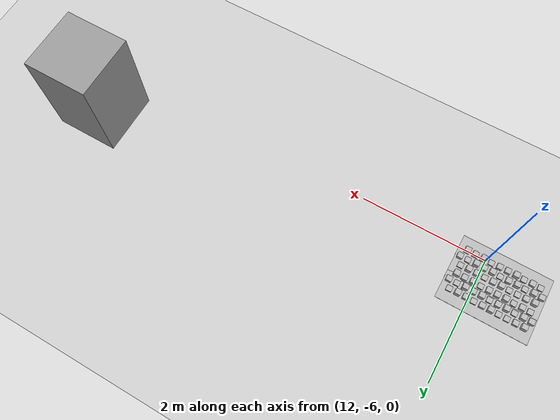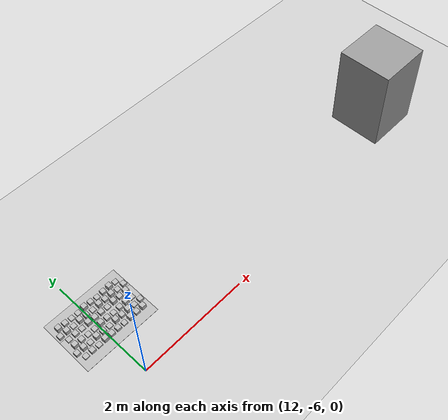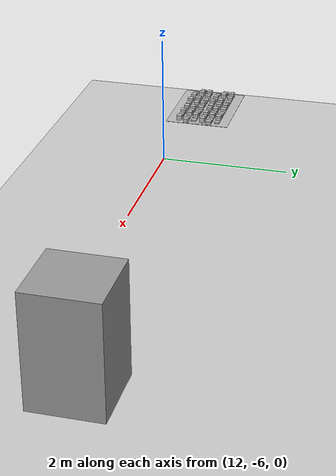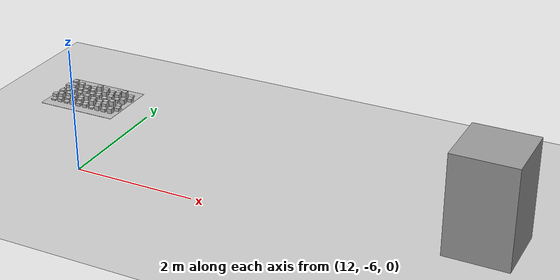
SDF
<sdf version="1.6">
 <world name="default">
  <model name="ground_plane">
   <static>1</static>
   <link name="link">
    <collision name="collision">
     <geometry><plane><normal>0 0 1</normal><size>100 100</size></plane></geometry>
     <surface><friction><ode><mu>100</mu><mu2>50</mu2></ode></friction></surface>
    </collision>
    <visual name="visual">
     <cast_shadows>0</cast_shadows>
     <geometry><plane><normal>0 0 1</normal><size>100 100</size></plane></geometry>
     <material>
      <script><uri>file://media/materials/scripts/gazebo.material</uri><name>Gazebo/Grey</name></script>
     </material>
    </visual>
   </link>
  </model>
  <model name="frc2016_roughterrain_clone_2_clone_clone_3">
   <static>1</static>
   <link name="link">
    <visual name="platform">
     <pose>0 0 0.08269 0 -0 0</pose>
     <geometry><box><size>1.27 0.5969 0.003175</size></box></geometry>
    </visual>
    <collision name="platform">
     <pose>0 0 0.08269 0 -0 0</pose>
     <geometry><box><size>1.27 0.5969 0.003175</size></box></geometry>
    </collision>
    <visual name="row1_block1_sm">
     <pose>0.51435 0.1143 0.09698 0 -0 0</pose>
     <geometry><box><size>0.0762 0.0762 0.0254</size></box></geometry>
    </visual>
    <collision name="row1_block1_sm">
     <pose>0.51435 0.1143 0.09698 0 -0 0</pose>
     <geometry><box><size>0.0762 0.0762 0.0254</size></box></geometry>
    </collision>
    <visual name="row1_block2_lg">
     <pose>0.40005 0.1143 0.12238 0 -0 0</pose>
     <geometry><box><size>0.0762 0.0762 0.0762</size></box></geometry>
    </visual>
    <collision name="row1_block2_lg">
     <pose>0.40005 0.1143 0.12238 0 -0 0</pose>
     <geometry><box><size>0.0762 0.0762 0.0762</size></box></geometry>
    </collision>
    <visual name="row1_block3_md">
     <pose>0.28575 0.1143 0.10968 0 -0 0</pose>
     <geometry><box><size>0.0762 0.0762 0.0508</size></box></geometry>
    </visual>
    <collision name="row1_block3_md">
     <pose>0.28575 0.1143 0.10968 0 -0 0</pose>
     <geometry><box><size>0.0762 0.0762 0.0508</size></box></geometry>
    </collision>
    <visual name="row1_block4_sm">
     <pose>0.17145 0.1143 0.09698 0 -0 0</pose>
     <geometry><box><size>0.0762 0.0762 0.0254</size></box></geometry>
    </visual>
    <collision name="row1_block4_sm">
     <pose>0.17145 0.1143 0.09698 0 -0 0</pose>
     <geometry><box><size>0.0762 0.0762 0.0254</size></box></geometry>
    </collision>
    <visual name="row1_block5_md">
     <pose>0.05715 0.1143 0.10968 0 -0 0</pose>
     <geometry><box><size>0.0762 0.0762 0.0508</size></box></geometry>
    </visual>
    <collision name="row1_block5_md">
     <pose>0.05715 0.1143 0.10968 0 -0 0</pose>
     <geometry><box><size>0.0762 0.0762 0.0508</size></box></geometry>
    </collision>
    <visual name="row1_block6_lg">
     <pose>-0.05715 0.1143 0.12238 0 -0 0</pose>
     <geometry><box><size>0.0762 0.0762 0.0762</size></box></geometry>
    </visual>
    <collision name="row1_block6_lg">
     <pose>-0.05715 0.1143 0.12238 0 -0 0</pose>
     <geometry><box><size>0.0762 0.0762 0.0762</size></box></geometry>
    </collision>
    <visual name="row1_block7_sm">
     <pose>-0.17145 0.1143 0.09698 0 -0 0</pose>
     <geometry><box><size>0.0762 0.0762 0.0254</size></box></geometry>
    </visual>
    <collision name="row1_block7_sm">
     <pose>-0.17145 0.1143 0.09698 0 -0 0</pose>
     <geometry><box><size>0.0762 0.0762 0.0254</size></box></geometry>
    </collision>
    <visual name="row1_block8_sm">
     <pose>-0.28575 0.1143 0.09698 0 -0 0</pose>
     <geometry><box><size>0.0762 0.0762 0.0254</size></box></geometry>
    </visual>
    <collision name="row1_block8_sm">
     <pose>-0.28575 0.1143 0.09698 0 -0 0</pose>
     <geometry><box><size>0.0762 0.0762 0.0254</size></box></geometry>
    </collision>
    <visual name="row1_block9_md">
     <pose>-0.40005 0.1143 0.10968 0 -0 0</pose>
     <geometry><box><size>0.0762 0.0762 0.0508</size></box></geometry>
    </visual>
    <collision name="row1_block9_md">
     <pose>-0.40005 0.1143 0.10968 0 -0 0</pose>
     <geometry><box><size>0.0762 0.0762 0.0508</size></box></geometry>
    </collision>
    <visual name="row1_block10_lg">
     <pose>-0.51435 0.1143 0.12238 0 -0 0</pose>
     <geometry><box><size>0.0762 0.0762 0.0762</size></box></geometry>
    </visual>
    <collision name="row1_block10_lg">
     <pose>-0.51435 0.1143 0.12238 0 -0 0</pose>
     <geometry><box><size>0.0762 0.0762 0.0762</size></box></geometry>
    </collision>
    <visual name="row2_block1_md">
     <pose>0.5715 0 0.10968 0 -0 0</pose>
     <geometry><box><size>0.0762 0.0762 0.0508</size></box></geometry>
    </visual>
    <collision name="row2_block1_md">
     <pose>0.5715 0 0.10968 0 -0 0</pose>
     <geometry><box><size>0.0762 0.0762 0.0508</size></box></geometry>
    </collision>
    <visual name="row2_block2_sm">
     <pose>0.4572 0 0.09698 0 -0 0</pose>
     <geometry><box><size>0.0762 0.0762 0.0254</size></box></geometry>
    </visual>
    <collision name="row2_block2_sm">
     <pose>0.4572 0 0.09698 0 -0 0</pose>
     <geometry><box><size>0.0762 0.0762 0.0254</size></box></geometry>
    </collision>
    <visual name="row2_block3_lg">
     <pose>0.3429 0 0.12238 0 -0 0</pose>
     <geometry><box><size>0.0762 0.0762 0.0762</size></box></geometry>
    </visual>
    <collision name="row2_block3_lg">
     <pose>0.3429 0 0.12238 0 -0 0</pose>
     <geometry><box><size>0.0762 0.0762 0.0762</size></box></geometry>
    </collision>
    <visual name="row2_block4_md">
     <pose>0.2286 0 0.10968 0 -0 0</pose>
     <geometry><box><size>0.0762 0.0762 0.0508</size></box></geometry>
    </visual>
    <collision name="row2_block4_md">
     <pose>0.2286 0 0.10968 0 -0 0</pose>
     <geometry><box><size>0.0762 0.0762 0.0508</size></box></geometry>
    </collision>
    <visual name="row2_block5_lg">
     <pose>0.1143 0 0.12238 0 -0 0</pose>
     <geometry><box><size>0.0762 0.0762 0.0762</size></box></geometry>
    </visual>
    <collision name="row2_block5_lg">
     <pose>0.1143 0 0.12238 0 -0 0</pose>
     <geometry><box><size>0.0762 0.0762 0.0762</size></box></geometry>
    </collision>
    <visual name="row2_block6_sm">
     <pose>0 0 0.09698 0 -0 0</pose>
     <geometry><box><size>0.0762 0.0762 0.0254</size></box></geometry>
    </visual>
    <collision name="row2_block6_sm">
     <pose>0 0 0.09698 0 -0 0</pose>
     <geometry><box><size>0.0762 0.0762 0.0254</size></box></geometry>
    </collision>
    <visual name="row2_block7_md">
     <pose>-0.1143 0 0.10968 0 -0 0</pose>
     <geometry><box><size>0.0762 0.0762 0.0508</size></box></geometry>
    </visual>
    <collision name="row2_block7_md">
     <pose>-0.1143 0 0.10968 0 -0 0</pose>
     <geometry><box><size>0.0762 0.0762 0.0508</size></box></geometry>
    </collision>
    <visual name="row2_block8_lg">
     <pose>-0.2286 0 0.12238 0 -0 0</pose>
     <geometry><box><size>0.0762 0.0762 0.0762</size></box></geometry>
    </visual>
    <collision name="row2_block8_lg">
     <pose>-0.2286 0 0.12238 0 -0 0</pose>
     <geometry><box><size>0.0762 0.0762 0.0762</size></box></geometry>
    </collision>
    <visual name="row2_block9_sm">
     <pose>-0.3429 0 0.09698 0 -0 0</pose>
     <geometry><box><size>0.0762 0.0762 0.0254</size></box></geometry>
    </visual>
    <collision name="row2_block9_sm">
     <pose>-0.3429 0 0.09698 0 -0 0</pose>
     <geometry><box><size>0.0762 0.0762 0.0254</size></box></geometry>
    </collision>
    <visual name="row2_block10_lg">
     <pose>-0.4572 0 0.12238 0 -0 0</pose>
     <geometry><box><size>0.0762 0.0762 0.0762</size></box></geometry>
    </visual>
    <collision name="row2_block10_lg">
     <pose>-0.4572 0 0.12238 0 -0 0</pose>
     <geometry><box><size>0.0762 0.0762 0.0762</size></box></geometry>
    </collision>
    <visual name="row2_block11_md">
     <pose>-0.5715 0 0.10968 0 -0 0</pose>
     <geometry><box><size>0.0762 0.0762 0.0508</size></box></geometry>
    </visual>
    <collision name="row2_block11_md">
     <pose>-0.5715 0 0.10968 0 -0 0</pose>
     <geometry><box><size>0.0762 0.0762 0.0508</size></box></geometry>
    </collision>
    <visual name="row3_block1_lg">
     <pose>0.51435 -0.1143 0.12238 0 -0 0</pose>
     <geometry><box><size>0.0762 0.0762 0.0762</size></box></geometry>
    </visual>
    <collision name="row3_block1_lg">
     <pose>0.51435 -0.1143 0.12238 0 -0 0</pose>
     <geometry><box><size>0.0762 0.0762 0.0762</size></box></geometry>
    </collision>
    <visual name="row3_block2_md">
     <pose>0.40005 -0.1143 0.10968 0 -0 0</pose>
     <geometry><box><size>0.0762 0.0762 0.0508</size></box></geometry>
    </visual>
    <collision name="row3_block2_md">
     <pose>0.40005 -0.1143 0.10968 0 -0 0</pose>
     <geometry><box><size>0.0762 0.0762 0.0508</size></box></geometry>
    </collision>
    <visual name="row3_block3_lg">
     <pose>0.28575 -0.1143 0.12238 0 -0 0</pose>
     <geometry><box><size>0.0762 0.0762 0.0762</size></box></geometry>
    </visual>
    <collision name="row3_block3_lg">
     <pose>0.28575 -0.1143 0.12238 0 -0 0</pose>
     <geometry><box><size>0.0762 0.0762 0.0762</size></box></geometry>
    </collision>
    <visual name="row3_block4_sm">
     <pose>0.17145 -0.1143 0.09698 0 -0 0</pose>
     <geometry><box><size>0.0762 0.0762 0.0254</size></box></geometry>
    </visual>
    <collision name="row3_block4_sm">
     <pose>0.17145 -0.1143 0.09698 0 -0 0</pose>
     <geometry><box><size>0.0762 0.0762 0.0254</size></box></geometry>
    </collision>
    <visual name="row3_block5_md">
     <pose>0.05715 -0.1143 0.10968 0 -0 0</pose>
     <geometry><box><size>0.0762 0.0762 0.0508</size></box></geometry>
    </visual>
    <collision name="row3_block5_md">
     <pose>0.05715 -0.1143 0.10968 0 -0 0</pose>
     <geometry><box><size>0.0762 0.0762 0.0508</size></box></geometry>
    </collision>
    <visual name="row3_block6_md">
     <pose>-0.05715 -0.1143 0.10968 0 -0 0</pose>
     <geometry><box><size>0.0762 0.0762 0.0508</size></box></geometry>
    </visual>
    <collision name="row3_block6_md">
     <pose>-0.05715 -0.1143 0.10968 0 -0 0</pose>
     <geometry><box><size>0.0762 0.0762 0.0508</size></box></geometry>
    </collision>
    <visual name="row3_block7_lg">
     <pose>-0.17145 -0.1143 0.12238 0 -0 0</pose>
     <geometry><box><size>0.0762 0.0762 0.0762</size></box></geometry>
    </visual>
    <collision name="row3_block7_lg">
     <pose>-0.17145 -0.1143 0.12238 0 -0 0</pose>
     <geometry><box><size>0.0762 0.0762 0.0762</size></box></geometry>
    </collision>
    <visual name="row3_block8_sm">
     <pose>-0.28575 -0.1143 0.09698 0 -0 0</pose>
     <geometry><box><size>0.0762 0.0762 0.0254</size></box></geometry>
    </visual>
    <collision name="row3_block8_sm">
     <pose>-0.28575 -0.1143 0.09698 0 -0 0</pose>
     <geometry><box><size>0.0762 0.0762 0.0254</size></box></geometry>
    </collision>
    <visual name="row3_block9_md">
     <pose>-0.40005 -0.1143 0.10968 0 -0 0</pose>
     <geometry><box><size>0.0762 0.0762 0.0508</size></box></geometry>
    </visual>
    <collision name="row3_block9_md">
     <pose>-0.40005 -0.1143 0.10968 0 -0 0</pose>
     <geometry><box><size>0.0762 0.0762 0.0508</size></box></geometry>
    </collision>
    <visual name="row3_block10_sm">
     <pose>-0.51435 -0.1143 0.09698 0 -0 0</pose>
     <geometry><box><size>0.0762 0.0762 0.0254</size></box></geometry>
    </visual>
    <collision name="row3_block10_sm">
     <pose>-0.51435 -0.1143 0.09698 0 -0 0</pose>
     <geometry><box><size>0.0762 0.0762 0.0254</size></box></geometry>
    </collision>
   </link>
   <pose>11.8897 -5.152 0.826533 0 -0 0</pose>
  </model>
  <model name="frc2016_roughterrain_clone_2_clone_clone_4">
   <static>1</static>
   <link name="link">
    <visual name="platform">
     <pose>0 0 0.08269 0 -0 0</pose>
     <geometry><box><size>1.27 0.5969 0.003175</size></box></geometry>
    </visual>
    <collision name="platform">
     <pose>0 0 0.08269 0 -0 0</pose>
     <geometry><box><size>1.27 0.5969 0.003175</size></box></geometry>
    </collision>
    <visual name="row1_block1_sm">
     <pose>0.51435 0.1143 0.09698 0 -0 0</pose>
     <geometry><box><size>0.0762 0.0762 0.0254</size></box></geometry>
    </visual>
    <collision name="row1_block1_sm">
     <pose>0.51435 0.1143 0.09698 0 -0 0</pose>
     <geometry><box><size>0.0762 0.0762 0.0254</size></box></geometry>
    </collision>
    <visual name="row1_block2_lg">
     <pose>0.40005 0.1143 0.12238 0 -0 0</pose>
     <geometry><box><size>0.0762 0.0762 0.0762</size></box></geometry>
    </visual>
    <collision name="row1_block2_lg">
     <pose>0.40005 0.1143 0.12238 0 -0 0</pose>
     <geometry><box><size>0.0762 0.0762 0.0762</size></box></geometry>
    </collision>
    <visual name="row1_block3_md">
     <pose>0.28575 0.1143 0.10968 0 -0 0</pose>
     <geometry><box><size>0.0762 0.0762 0.0508</size></box></geometry>
    </visual>
    <collision name="row1_block3_md">
     <pose>0.28575 0.1143 0.10968 0 -0 0</pose>
     <geometry><box><size>0.0762 0.0762 0.0508</size></box></geometry>
    </collision>
    <visual name="row1_block4_sm">
     <pose>0.17145 0.1143 0.09698 0 -0 0</pose>
     <geometry><box><size>0.0762 0.0762 0.0254</size></box></geometry>
    </visual>
    <collision name="row1_block4_sm">
     <pose>0.17145 0.1143 0.09698 0 -0 0</pose>
     <geometry><box><size>0.0762 0.0762 0.0254</size></box></geometry>
    </collision>
    <visual name="row1_block5_md">
     <pose>0.05715 0.1143 0.10968 0 -0 0</pose>
     <geometry><box><size>0.0762 0.0762 0.0508</size></box></geometry>
    </visual>
    <collision name="row1_block5_md">
     <pose>0.05715 0.1143 0.10968 0 -0 0</pose>
     <geometry><box><size>0.0762 0.0762 0.0508</size></box></geometry>
    </collision>
    <visual name="row1_block6_lg">
     <pose>-0.05715 0.1143 0.12238 0 -0 0</pose>
     <geometry><box><size>0.0762 0.0762 0.0762</size></box></geometry>
    </visual>
    <collision name="row1_block6_lg">
     <pose>-0.05715 0.1143 0.12238 0 -0 0</pose>
     <geometry><box><size>0.0762 0.0762 0.0762</size></box></geometry>
    </collision>
    <visual name="row1_block7_sm">
     <pose>-0.17145 0.1143 0.09698 0 -0 0</pose>
     <geometry><box><size>0.0762 0.0762 0.0254</size></box></geometry>
    </visual>
    <collision name="row1_block7_sm">
     <pose>-0.17145 0.1143 0.09698 0 -0 0</pose>
     <geometry><box><size>0.0762 0.0762 0.0254</size></box></geometry>
    </collision>
    <visual name="row1_block8_sm">
     <pose>-0.28575 0.1143 0.09698 0 -0 0</pose>
     <geometry><box><size>0.0762 0.0762 0.0254</size></box></geometry>
    </visual>
    <collision name="row1_block8_sm">
     <pose>-0.28575 0.1143 0.09698 0 -0 0</pose>
     <geometry><box><size>0.0762 0.0762 0.0254</size></box></geometry>
    </collision>
    <visual name="row1_block9_md">
     <pose>-0.40005 0.1143 0.10968 0 -0 0</pose>
     <geometry><box><size>0.0762 0.0762 0.0508</size></box></geometry>
    </visual>
    <collision name="row1_block9_md">
     <pose>-0.40005 0.1143 0.10968 0 -0 0</pose>
     <geometry><box><size>0.0762 0.0762 0.0508</size></box></geometry>
    </collision>
    <visual name="row1_block10_lg">
     <pose>-0.51435 0.1143 0.12238 0 -0 0</pose>
     <geometry><box><size>0.0762 0.0762 0.0762</size></box></geometry>
    </visual>
    <collision name="row1_block10_lg">
     <pose>-0.51435 0.1143 0.12238 0 -0 0</pose>
     <geometry><box><size>0.0762 0.0762 0.0762</size></box></geometry>
    </collision>
    <visual name="row2_block1_md">
     <pose>0.5715 0 0.10968 0 -0 0</pose>
     <geometry><box><size>0.0762 0.0762 0.0508</size></box></geometry>
    </visual>
    <collision name="row2_block1_md">
     <pose>0.5715 0 0.10968 0 -0 0</pose>
     <geometry><box><size>0.0762 0.0762 0.0508</size></box></geometry>
    </collision>
    <visual name="row2_block2_sm">
     <pose>0.4572 0 0.09698 0 -0 0</pose>
     <geometry><box><size>0.0762 0.0762 0.0254</size></box></geometry>
    </visual>
    <collision name="row2_block2_sm">
     <pose>0.4572 0 0.09698 0 -0 0</pose>
     <geometry><box><size>0.0762 0.0762 0.0254</size></box></geometry>
    </collision>
    <visual name="row2_block3_lg">
     <pose>0.3429 0 0.12238 0 -0 0</pose>
     <geometry><box><size>0.0762 0.0762 0.0762</size></box></geometry>
    </visual>
    <collision name="row2_block3_lg">
     <pose>0.3429 0 0.12238 0 -0 0</pose>
     <geometry><box><size>0.0762 0.0762 0.0762</size></box></geometry>
    </collision>
    <visual name="row2_block4_md">
     <pose>0.2286 0 0.10968 0 -0 0</pose>
     <geometry><box><size>0.0762 0.0762 0.0508</size></box></geometry>
    </visual>
    <collision name="row2_block4_md">
     <pose>0.2286 0 0.10968 0 -0 0</pose>
     <geometry><box><size>0.0762 0.0762 0.0508</size></box></geometry>
    </collision>
    <visual name="row2_block5_lg">
     <pose>0.1143 0 0.12238 0 -0 0</pose>
     <geometry><box><size>0.0762 0.0762 0.0762</size></box></geometry>
    </visual>
    <collision name="row2_block5_lg">
     <pose>0.1143 0 0.12238 0 -0 0</pose>
     <geometry><box><size>0.0762 0.0762 0.0762</size></box></geometry>
    </collision>
    <visual name="row2_block6_sm">
     <pose>0 0 0.09698 0 -0 0</pose>
     <geometry><box><size>0.0762 0.0762 0.0254</size></box></geometry>
    </visual>
    <collision name="row2_block6_sm">
     <pose>0 0 0.09698 0 -0 0</pose>
     <geometry><box><size>0.0762 0.0762 0.0254</size></box></geometry>
    </collision>
    <visual name="row2_block7_md">
     <pose>-0.1143 0 0.10968 0 -0 0</pose>
     <geometry><box><size>0.0762 0.0762 0.0508</size></box></geometry>
    </visual>
    <collision name="row2_block7_md">
     <pose>-0.1143 0 0.10968 0 -0 0</pose>
     <geometry><box><size>0.0762 0.0762 0.0508</size></box></geometry>
    </collision>
    <visual name="row2_block8_lg">
     <pose>-0.2286 0 0.12238 0 -0 0</pose>
     <geometry><box><size>0.0762 0.0762 0.0762</size></box></geometry>
    </visual>
    <collision name="row2_block8_lg">
     <pose>-0.2286 0 0.12238 0 -0 0</pose>
     <geometry><box><size>0.0762 0.0762 0.0762</size></box></geometry>
    </collision>
    <visual name="row2_block9_sm">
     <pose>-0.3429 0 0.09698 0 -0 0</pose>
     <geometry><box><size>0.0762 0.0762 0.0254</size></box></geometry>
    </visual>
    <collision name="row2_block9_sm">
     <pose>-0.3429 0 0.09698 0 -0 0</pose>
     <geometry><box><size>0.0762 0.0762 0.0254</size></box></geometry>
    </collision>
    <visual name="row2_block10_lg">
     <pose>-0.4572 0 0.12238 0 -0 0</pose>
     <geometry><box><size>0.0762 0.0762 0.0762</size></box></geometry>
    </visual>
    <collision name="row2_block10_lg">
     <pose>-0.4572 0 0.12238 0 -0 0</pose>
     <geometry><box><size>0.0762 0.0762 0.0762</size></box></geometry>
    </collision>
    <visual name="row2_block11_md">
     <pose>-0.5715 0 0.10968 0 -0 0</pose>
     <geometry><box><size>0.0762 0.0762 0.0508</size></box></geometry>
    </visual>
    <collision name="row2_block11_md">
     <pose>-0.5715 0 0.10968 0 -0 0</pose>
     <geometry><box><size>0.0762 0.0762 0.0508</size></box></geometry>
    </collision>
    <visual name="row3_block1_lg">
     <pose>0.51435 -0.1143 0.12238 0 -0 0</pose>
     <geometry><box><size>0.0762 0.0762 0.0762</size></box></geometry>
    </visual>
    <collision name="row3_block1_lg">
     <pose>0.51435 -0.1143 0.12238 0 -0 0</pose>
     <geometry><box><size>0.0762 0.0762 0.0762</size></box></geometry>
    </collision>
    <visual name="row3_block2_md">
     <pose>0.40005 -0.1143 0.10968 0 -0 0</pose>
     <geometry><box><size>0.0762 0.0762 0.0508</size></box></geometry>
    </visual>
    <collision name="row3_block2_md">
     <pose>0.40005 -0.1143 0.10968 0 -0 0</pose>
     <geometry><box><size>0.0762 0.0762 0.0508</size></box></geometry>
    </collision>
    <visual name="row3_block3_lg">
     <pose>0.28575 -0.1143 0.12238 0 -0 0</pose>
     <geometry><box><size>0.0762 0.0762 0.0762</size></box></geometry>
    </visual>
    <collision name="row3_block3_lg">
     <pose>0.28575 -0.1143 0.12238 0 -0 0</pose>
     <geometry><box><size>0.0762 0.0762 0.0762</size></box></geometry>
    </collision>
    <visual name="row3_block4_sm">
     <pose>0.17145 -0.1143 0.09698 0 -0 0</pose>
     <geometry><box><size>0.0762 0.0762 0.0254</size></box></geometry>
    </visual>
    <collision name="row3_block4_sm">
     <pose>0.17145 -0.1143 0.09698 0 -0 0</pose>
     <geometry><box><size>0.0762 0.0762 0.0254</size></box></geometry>
    </collision>
    <visual name="row3_block5_md">
     <pose>0.05715 -0.1143 0.10968 0 -0 0</pose>
     <geometry><box><size>0.0762 0.0762 0.0508</size></box></geometry>
    </visual>
    <collision name="row3_block5_md">
     <pose>0.05715 -0.1143 0.10968 0 -0 0</pose>
     <geometry><box><size>0.0762 0.0762 0.0508</size></box></geometry>
    </collision>
    <visual name="row3_block6_md">
     <pose>-0.05715 -0.1143 0.10968 0 -0 0</pose>
     <geometry><box><size>0.0762 0.0762 0.0508</size></box></geometry>
    </visual>
    <collision name="row3_block6_md">
     <pose>-0.05715 -0.1143 0.10968 0 -0 0</pose>
     <geometry><box><size>0.0762 0.0762 0.0508</size></box></geometry>
    </collision>
    <visual name="row3_block7_lg">
     <pose>-0.17145 -0.1143 0.12238 0 -0 0</pose>
     <geometry><box><size>0.0762 0.0762 0.0762</size></box></geometry>
    </visual>
    <collision name="row3_block7_lg">
     <pose>-0.17145 -0.1143 0.12238 0 -0 0</pose>
     <geometry><box><size>0.0762 0.0762 0.0762</size></box></geometry>
    </collision>
    <visual name="row3_block8_sm">
     <pose>-0.28575 -0.1143 0.09698 0 -0 0</pose>
     <geometry><box><size>0.0762 0.0762 0.0254</size></box></geometry>
    </visual>
    <collision name="row3_block8_sm">
     <pose>-0.28575 -0.1143 0.09698 0 -0 0</pose>
     <geometry><box><size>0.0762 0.0762 0.0254</size></box></geometry>
    </collision>
    <visual name="row3_block9_md">
     <pose>-0.40005 -0.1143 0.10968 0 -0 0</pose>
     <geometry><box><size>0.0762 0.0762 0.0508</size></box></geometry>
    </visual>
    <collision name="row3_block9_md">
     <pose>-0.40005 -0.1143 0.10968 0 -0 0</pose>
     <geometry><box><size>0.0762 0.0762 0.0508</size></box></geometry>
    </collision>
    <visual name="row3_block10_sm">
     <pose>-0.51435 -0.1143 0.09698 0 -0 0</pose>
     <geometry><box><size>0.0762 0.0762 0.0254</size></box></geometry>
    </visual>
    <collision name="row3_block10_sm">
     <pose>-0.51435 -0.1143 0.09698 0 -0 0</pose>
     <geometry><box><size>0.0762 0.0762 0.0254</size></box></geometry>
    </collision>
   </link>
   <pose>11.8896 -5.51113 0.826533 0 -0 0</pose>
  </model>
  <model name="unit_box_clone_10_clone_11">
   <pose>18.334 -5.29988 0.79937 0 0 -0.000153</pose>
   <link name="link">
    <inertial>
     <mass>1</mass>
     <inertia>
      <ixx>0.166667</ixx>
      <ixy>0</ixy>
      <ixz>0</ixz>
      <iyy>0.166667</iyy>
      <iyz>0</iyz>
      <izz>0.166667</izz>
     </inertia>
    </inertial>
    <collision name="collision"><geometry><box><size>1 1 1.59874</size></box></geometry></collision>
    <visual name="visual">
     <geometry><box><size>1 1 1.59874</size></box></geometry>
     <material>
      <script><name>Gazebo/Grey</name><uri>file://media/materials/scripts/gazebo.material</uri></script>
     </material>
    </visual>
   </link>
  </model>
 </world>
</sdf>
